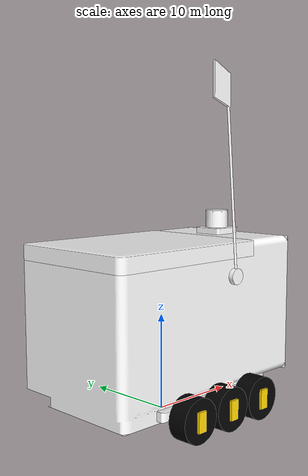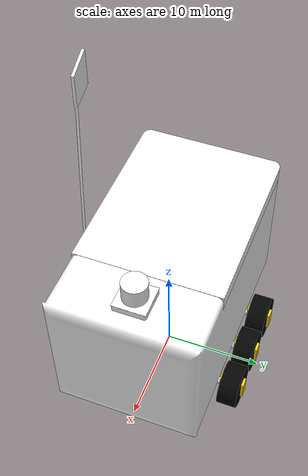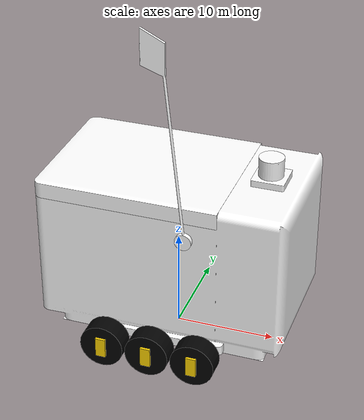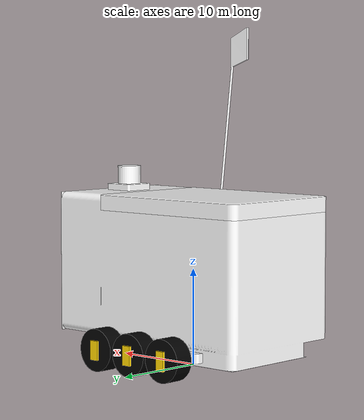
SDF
<?xml version="1.0" ?>
<sdf version="1.10">
<model name="deliverer_0">
    <static>false</static>

    <plugin filename="gz-sim-pose-publisher-system" name="gz::sim::systems::PosePublisher">
        <publish_link_pose>true</publish_link_pose>
        <publish_collision_pose>false</publish_collision_pose>
        <publish_visual_pose>false</publish_visual_pose>
        <publish_nested_model_pose>false</publish_nested_model_pose>
        <use_pose_vector_msg>false</use_pose_vector_msg>
    </plugin>

    <link name="deliverer_0/base_link">
        <pose>0 0 0 0 0 0</pose>
        <visual name="visual">
            <geometry><mesh><uri>file:///home/danil/Documents/ROSWorkspaces/RosMiniProject/src/making_delivery/models/rover.obj</uri></mesh></geometry>
            <material>
                <diffuse>1 1 1 1</diffuse>
                <pbr><metal>
                    <albedo_map>resources://T_Rover_BC_4K.png</albedo_map>
                    <roughness>1</roughness>
                    <metalness>0</metalness>
                </metal></pbr>
            </material>
        </visual>
        <collision name="collision">
            <pose>0 0 8.92 0 0 0</pose>
            <geometry><box><size>24.6744 14.86332 17.8383</size></box></geometry>
        </collision>
        <inertial>
          <mass>15.0</mass>
        </inertial>
    </link>
    <joint name="deliverer_0/lid_joint" type="revolute">
        <parent>deliverer_0/base_link</parent>
        <child>deliverer_0/lid_link</child>
        <axis>
            <xyz>0 1 0</xyz>
            <limit><lower>0</lower><upper>1.29</upper></limit>
        </axis>
    </joint>
    <link name="deliverer_0/lid_link">
        <pose>5.72194 0.139501 17.771 0 0 0</pose>
        <visual name="visual">
            <geometry><mesh><uri>file:///home/danil/Documents/ROSWorkspaces/RosMiniProject/src/making_delivery/models/lid.obj</uri></mesh></geometry>
            <material>
                <diffuse>1 1 1 1</diffuse>
                <pbr><metal>
                    <albedo_map>resources://T_Lid_BC_4K.png</albedo_map>
                    <roughness>1</roughness>
                    <metalness>0</metalness>
                </metal></pbr>
            </material>
        </visual>
        <collision name="collision">
            <pose>-9.1069095 0 -0.5 0 0 0</pose>
            <geometry><box><size>18.213819 14.57102 1.619002</size></box></geometry>
        </collision>
        <inertial>
          <mass>5.0</mass>
        </inertial>
    </link>

    <joint name="deliverer_0/lidar_joint" type="fixed">
        <parent>deliverer_0/base_link</parent>
        <child>deliverer_0/lidar_link</child>
    </joint>
    <link name="deliverer_0/lidar_link">
        <pose>9.07392 0.361634 17.7084 0 0 0</pose>
        <visual name="visual">
            <geometry><mesh><uri>file:///home/danil/Documents/ROSWorkspaces/RosMiniProject/src/making_delivery/models/lidar.obj</uri></mesh></geometry>
            <material>
                <diffuse>1 1 1 1</diffuse>
                <pbr><metal>
                    <albedo_map>resources://T_Lidar_BC_4K.png</albedo_map>
                    <roughness>1</roughness>
                    <metalness>0</metalness>
                </metal></pbr>
            </material>
        </visual>
        <collision name="collision">
            <pose>0 0 1.5 0 0 0</pose>
            <geometry><box><size>3.5 3.5 2.36</size></box></geometry>
        </collision>
        <inertial>
            <mass>0.5</mass>
        </inertial>
        <sensor name="gpu_lidar" type="gpu_lidar">
             <pose>0 0 1.4 0 0 0</pose>
             <topic>/deliverer_0_lidar</topic>
             <update_rate>50</update_rate>
             <ray>
                 <scan>
                     <horizontal>
                         <samples>1</samples>
                         <resolution>1</resolution>
                         <min_angle>0</min_angle>
                         <max_angle>6.28</max_angle>
                     </horizontal>
                     <vertical>
                         <samples>1</samples>
                         <resolution>1</resolution>
                         <min_angle>0</min_angle>
                         <max_angle>6.28</max_angle>
                     </vertical>
                 </scan>
                 <range>
                     <min>1</min>
                     <max>20</max>
                     <resolution>0.01</resolution>
                 </range>
             </ray>
             <always_on>1</always_on>
             <visualize>true</visualize>
        </sensor>
    </link>

    <joint name="deliverer_0/flag_joint" type="fixed">
        <parent>deliverer_0/base_link</parent>
        <child>deliverer_0/flag_link</child>
    </joint>
    <link name="deliverer_0/flag_link">
        <pose>3.0149 -7.38887 14.4931 0 0 0</pose>
        <visual name="visual">
            <geometry><mesh><uri>file:///home/danil/Documents/ROSWorkspaces/RosMiniProject/src/making_delivery/models/flag.obj</uri></mesh></geometry>
            <material>
                <diffuse>1 1 1 1</diffuse>
                <pbr><metal>
                    <albedo_map>resources://T_Flag_BC_4K.png</albedo_map>
                    <roughness>1</roughness>
                    <metalness>0</metalness>
                </metal></pbr>
            </material>
        </visual>
    </link>

    <joint name="deliverer_0/right_back_wheel_joint" type="revolute">
        <parent>deliverer_0/base_link</parent>
        <child>deliverer_0/right_back_wheel_link</child>
        <axis><xyz>0 0 1</xyz></axis>
    </joint>
    <link name="deliverer_0/right_back_wheel_link">
        <pose>-4.61739 -8.67886 2.18565 1.57 0 0</pose>
        <visual name="visual">
            <geometry><cylinder><radius>2.18565</radius><length>2</length></cylinder></geometry>
            <material>
                <diffuse>0.01 0.01 0.01 1</diffuse>
                <pbr><metal>
                    <roughness>0</roughness>
                    <metalness>0</metalness>
                </metal></pbr>
            </material>
        </visual>
        <visual name="stick">
            <geometry><box><size>1 2 2.5</size></box></geometry>
            <material>
                <diffuse>1 0.831 0 1</diffuse>
                <pbr><metal>
                    <roughness>0</roughness>
                    <metalness>0</metalness>
                </metal></pbr>
            </material>
        </visual>
        <collision name="collision">
            <geometry><cylinder><radius>2.18565</radius><length>2</length></cylinder></geometry>
        </collision>
        <inertial>
            <mass>3.0</mass>
        </inertial>
    </link>

    <joint name="deliverer_0/right_middle_wheel_joint" type="revolute">
        <parent>deliverer_0/base_link</parent>
        <child>deliverer_0/right_middle_wheel_link</child>
        <axis><xyz>0 0 1</xyz></axis>
    </joint>
    <link name="deliverer_0/right_middle_wheel_link">
        <pose>0 -8.67886 2.18565 1.57 0 0</pose>
        <visual name="visual">
            <geometry><cylinder><radius>2.18565</radius><length>2</length></cylinder></geometry>
            <material>
                <diffuse>0.01 0.01 0.01 1</diffuse>
                <pbr><metal>
                    <roughness>0</roughness>
                    <metalness>0</metalness>
                </metal></pbr>
            </material>
        </visual>
        <visual name="stick">
            <geometry><box><size>1 2 2.5</size></box></geometry>
            <material>
                <diffuse>1 0.831 0 1</diffuse>
                <pbr><metal>
                    <roughness>0</roughness>
                    <metalness>0</metalness>
                </metal></pbr>
            </material>
        </visual>
        <collision name="collision">
            <geometry><cylinder><radius>2.18565</radius><length>2</length></cylinder></geometry>
        </collision>
        <inertial>
            <mass>3.0</mass>
        </inertial>
    </link>

    <joint name="deliverer_0/right_front_wheel_joint" type="revolute">
        <parent>deliverer_0/base_link</parent>
        <child>deliverer_0/right_front_wheel_link</child>
        <axis><xyz>0 0 1</xyz></axis>
    </joint>
    <link name="deliverer_0/right_front_wheel_link">
        <pose>4.61739 -8.67886 2.18565 1.57 0 0</pose>
        <visual name="visual">
            <geometry><cylinder><radius>2.18565</radius><length>2</length></cylinder></geometry>
            <material>
                <diffuse>0.01 0.01 0.01 1</diffuse>
                <pbr><metal>
                    <roughness>0</roughness>
                    <metalness>0</metalness>
                </metal></pbr>
            </material>
        </visual>
        <visual name="stick">
            <geometry><box><size>1 2 2.5</size></box></geometry>
            <material>
                <diffuse>1 0.831 0 1</diffuse>
                <pbr><metal>
                    <roughness>0</roughness>
                    <metalness>0</metalness>
                </metal></pbr>
            </material>
        </visual>
        <collision name="collision">
            <geometry><cylinder><radius>2.18565</radius><length>2</length></cylinder></geometry>
        </collision>
        <inertial>
            <mass>3.0</mass>
        </inertial>
    </link>

    <joint name="deliverer_0/left_back_wheel_joint" type="revolute">
        <parent>deliverer_0/base_link</parent>
        <child>deliverer_0/left_back_wheel_link</child>
        <axis><xyz>0 0 1</xyz></axis>
    </joint>
    <link name="deliverer_0/left_back_wheel_link">
        <pose>-4.61739 8.67886 2.18565 1.57 0 0</pose>
        <visual name="visual">
            <geometry><cylinder><radius>2.18565</radius><length>2</length></cylinder></geometry>
            <material>
                <diffuse>0.01 0.01 0.01 1</diffuse>
                <pbr><metal>
                    <roughness>0</roughness>
                    <metalness>0</metalness>
                </metal></pbr>
            </material>
        </visual>
        <visual name="stick">
            <geometry><box><size>1 2 2.5</size></box></geometry>
            <material>
                <diffuse>1 0.831 0 1</diffuse>
                <pbr><metal>
                    <roughness>0</roughness>
                    <metalness>0</metalness>
                </metal></pbr>
            </material>
        </visual>
        <collision name="collision">
            <geometry><cylinder><radius>2.18565</radius><length>2</length></cylinder></geometry>
        </collision>
        <inertial>
            <mass>3.0</mass>
        </inertial>
    </link>

    <joint name="deliverer_0/left_middle_wheel_joint" type="revolute">
        <parent>deliverer_0/base_link</parent>
        <child>deliverer_0/left_middle_wheel_link</child>
        <axis><xyz>0 0 1</xyz></axis>
    </joint>
    <link name="deliverer_0/left_middle_wheel_link">
        <pose>0 8.67886 2.18565 1.57 0 0</pose>
        <visual name="visual">
            <geometry><cylinder><radius>2.18565</radius><length>2</length></cylinder></geometry>
            <material>
                <diffuse>0.01 0.01 0.01 1</diffuse>
                <pbr><metal>
                    <roughness>0</roughness>
                    <metalness>0</metalness>
                </metal></pbr>
            </material>
        </visual>
        <visual name="stick">
            <geometry><box><size>1 2 2.5</size></box></geometry>
            <material>
                <diffuse>1 0.831 0 1</diffuse>
                <pbr><metal>
                    <roughness>0</roughness>
                    <metalness>0</metalness>
                </metal></pbr>
            </material>
        </visual>
        <collision name="collision">
            <geometry><cylinder><radius>2.18565</radius><length>2</length></cylinder></geometry>
        </collision>
        <inertial>
            <mass>3.0</mass>
        </inertial>
    </link>

    <joint name="deliverer_0/left_front_wheel_joint" type="revolute">
        <parent>deliverer_0/base_link</parent>
        <child>deliverer_0/left_front_wheel_link</child>
        <axis><xyz>0 0 1</xyz></axis>
    </joint>
    <link name="deliverer_0/left_front_wheel_link">
        <pose>4.61739 8.67886 2.18565 1.57 0 0</pose>
        <visual name="visual">
            <geometry><cylinder><radius>2.18565</radius><length>2</length></cylinder></geometry>
            <material>
                <diffuse>0.01 0.01 0.01 1</diffuse>
                <pbr><metal>
                    <roughness>0</roughness>
                    <metalness>0</metalness>
                </metal></pbr>
            </material>
        </visual>
        <visual name="stick">
            <geometry><box><size>1 2 2.5</size></box></geometry>
            <material>
                <diffuse>1 0.831 0 1</diffuse>
                <pbr><metal>
                    <roughness>0</roughness>
                    <metalness>0</metalness>
                </metal></pbr>
            </material>
        </visual>
        <collision name="collision">
            <geometry><cylinder><radius>2.18565</radius><length>2</length></cylinder></geometry>
        </collision>
        <inertial>
            <mass>3.0</mass>
        </inertial>
    </link>

</model>
</sdf>
